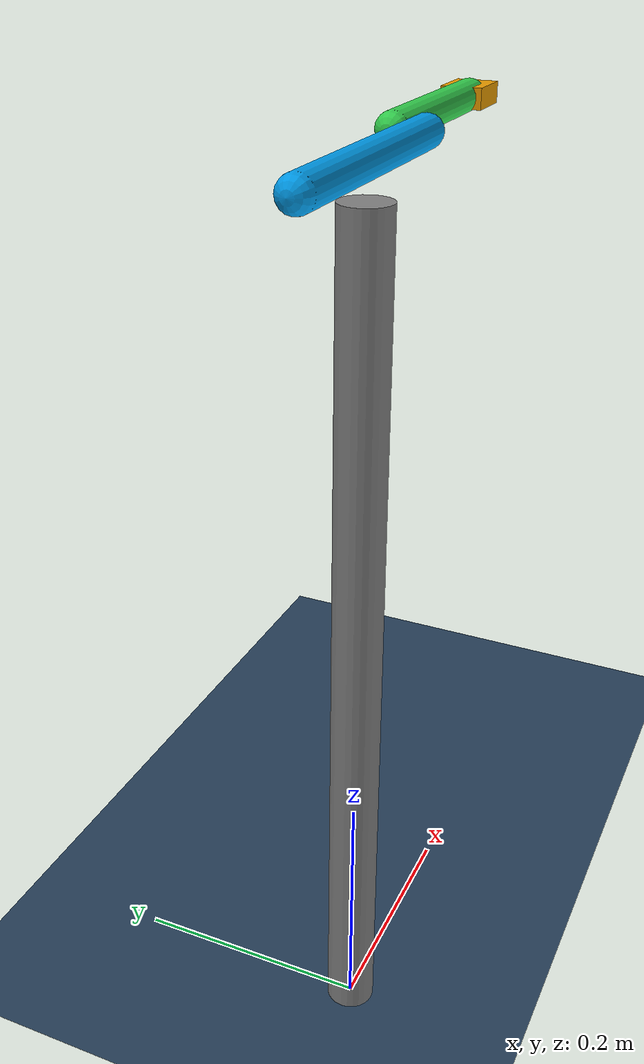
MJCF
<mujoco model="imu_sensors">
  <statistic center="0 0 0.1" extent="0.6" meansize=".05"/>

  <visual>
    <headlight diffuse="0.6 0.6 0.6" ambient="0.3 0.3 0.3" specular="0 0 0"/>
    <rgba haze="0.15 0.25 0.35 1"/>
    <global azimuth="-20" elevation="-20" ellipsoidinertia="true"/>
  </visual>

  <asset>
    <texture type="skybox" builtin="gradient" rgb1="0.3 0.5 0.7" rgb2="0 0 0" width="512" height="3072"/>
    <texture type="2d" name="groundplane" builtin="checker" mark="edge" rgb1="0.2 0.3 0.4" rgb2="0.1 0.2 0.3"
      markrgb="0.8 0.8 0.8" width="300" height="300"/>
    <material name="groundplane" texture="groundplane" texuniform="true" texrepeat="5 5" reflectance="0.2"/>
  </asset>

  <!-- magnetic sets the global field seen by the magnetometer (default "0 -0.5 0"). -->
  <option gravity="0 0 -9.81" timestep="0.002" magnetic="0 -0.5 0"/>

  <default>
    <joint damping="0.002"/>
    <geom contype="0" conaffinity="0"/>
  </default>

  <worldbody>
    <light pos="0 0 1.5" dir="0 0 -1" directional="true"/>
    <geom name="floor" size="0 0 0.05" type="plane" material="groundplane"/>

    <geom name="post" type="cylinder" pos="0 0 0.35" size="0.02 0.35" rgba="0.5 0.5 0.5 1"/>

    <!-- A free-swinging double pendulum with an IMU at the tip of the second link.
         It starts horizontal, so it swings as soon as the simulation runs. -->
    <body name="link1" pos="0 0.05 0.7">
      <joint name="hinge1" type="hinge" axis="0 1 0"/>
      <geom name="link1" type="capsule" fromto="0 0 0 0.25 0 0" size="0.015" rgba="0 0.6 0.9 1" mass="0.3"/>
      <body name="link2" pos="0.25 0.03 0">
        <joint name="hinge2" type="hinge" axis="0 1 0"/>
        <geom name="link2" type="capsule" fromto="0 0 0 0.2 0 0" size="0.015" rgba="0.2 0.8 0.3 1" mass="0.2"/>
        <geom name="imu_box" type="box" pos="0.2 0 0" size="0.025 0.02 0.01" rgba="0.9 0.6 0 1" mass="0.05"/>
        <!-- IMU sensors measure in the site frame. -->
        <site name="imu" pos="0.2 0 0" size="0.01" rgba="1 0.3 0 1"/>
      </body>
    </body>
  </worldbody>

  <sensor>
    <!-- accelerometer: linear acceleration minus gravity, so it reads +9.81 along the "up" axis at rest. -->
    <accelerometer name="accel" site="imu"/>
    <gyro name="gyro" site="imu"/>
    <velocimeter name="velocimeter" site="imu"/>
    <magnetometer name="magnetometer" site="imu"/>
    <!-- Ground truth orientation, for comparison with sensor fusion. -->
    <framequat name="imu_quat" objtype="site" objname="imu"/>
  </sensor>
</mujoco>
